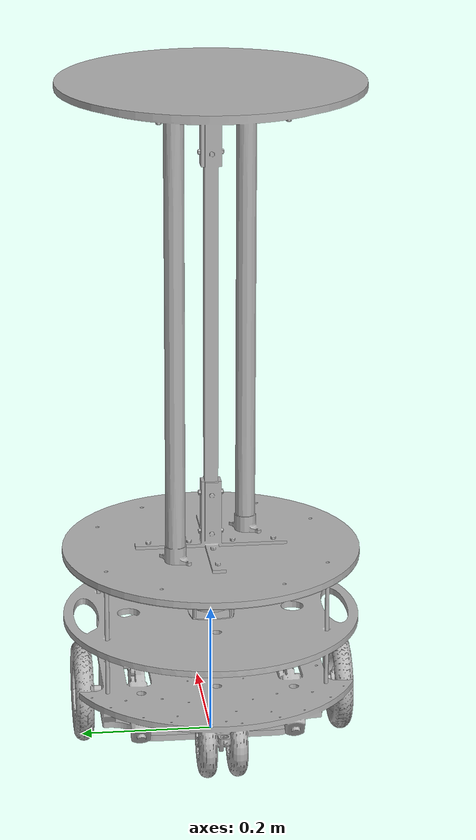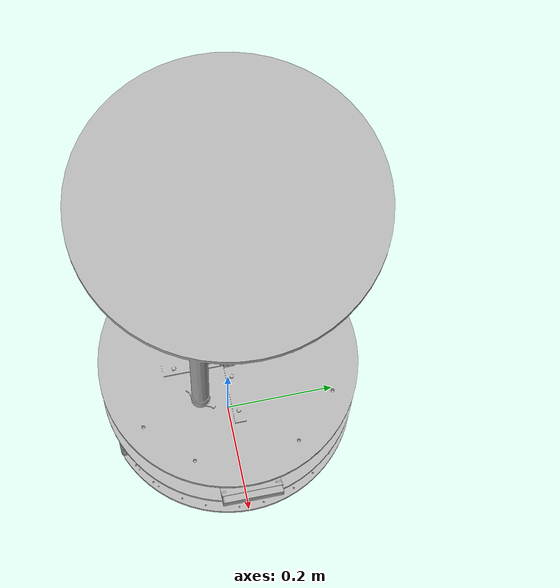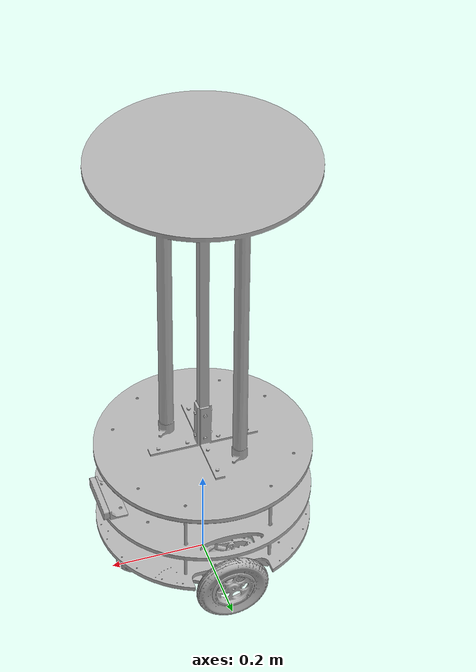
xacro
<?xml version="1.0" ?>
<robot name="ArloBot" xmlns:xacro="http://www.ros.org/wiki/xacro">

<xacro:include filename="$(find ArloBot_description)/urdf/materials.xacro" />
<xacro:include filename="$(find ArloBot_description)/urdf/ArloBot.gazebo" />
<link name="base_link">
  <inertial>
    <origin xyz="-0.0030523720356749316 1.9261577790248708e-05 0.11670714062507807" rpy="0 0 0"/>
    <mass value="36.71339924368182"/>
    <inertia ixx="0.535713" iyy="0.640269" izz="0.817401" ixy="4.7e-05" iyz="-5.3e-05" ixz="-0.004556"/>
  </inertial>
  <visual>
    <origin xyz="0 0 0" rpy="0 0 0"/>
    <geometry>
      <mesh filename="package://ArloBot_description/meshes/base_link.stl" scale="0.001 0.001 0.001"/>
    </geometry>
    <material name="silver"/>
  </visual>
  <collision>
    <origin xyz="0 0 0" rpy="0 0 0"/>
    <geometry>
      <mesh filename="package://ArloBot_description/meshes/base_link.stl" scale="0.001 0.001 0.001"/>
    </geometry>
  </collision>
</link>

<link name="right_wheel_link_1">
  <inertial>
    <origin xyz="-7.835127523269004e-05 -0.0008286369457853882 0.00024348818317009024" rpy="0 0 0"/>
    <mass value="0.12852805590489605"/>
    <inertia ixx="0.000202" iyy="0.000387" izz="0.000201" ixy="0.0" iyz="-0.0" ixz="0.0"/>
  </inertial>
  <visual>
    <origin xyz="-1e-06 0.197739 -0.073907" rpy="0 0 0"/>
    <geometry>
      <mesh filename="package://ArloBot_description/meshes/right_wheel_link_1.stl" scale="0.001 0.001 0.001"/>
    </geometry>
    <material name="silver"/>
  </visual>
  <collision>
    <origin xyz="-1e-06 0.197739 -0.073907" rpy="0 0 0"/>
    <geometry>
      <mesh filename="package://ArloBot_description/meshes/right_wheel_link_1.stl" scale="0.001 0.001 0.001"/>
    </geometry>
  </collision>
</link>

<link name="left_wheel_link_1">
  <inertial>
    <origin xyz="7.860640618754334e-05 0.0008286658783607792 0.00024348818316921594" rpy="0 0 0"/>
    <mass value="0.12852805590489605"/>
    <inertia ixx="0.000202" iyy="0.000387" izz="0.000201" ixy="0.0" iyz="0.0" ixz="-0.0"/>
  </inertial>
  <visual>
    <origin xyz="-1e-06 -0.197738 -0.073907" rpy="0 0 0"/>
    <geometry>
      <mesh filename="package://ArloBot_description/meshes/left_wheel_link_1.stl" scale="0.001 0.001 0.001"/>
    </geometry>
    <material name="silver"/>
  </visual>
  <collision>
    <origin xyz="-1e-06 -0.197738 -0.073907" rpy="0 0 0"/>
    <geometry>
      <mesh filename="package://ArloBot_description/meshes/left_wheel_link_1.stl" scale="0.001 0.001 0.001"/>
    </geometry>
  </collision>
</link>

<link name="laser_link_1">
  <inertial>
    <origin xyz="0.012015087212080352 -0.00038542888607400025 0.016230630117325978" rpy="0 0 0"/>
    <mass value="0.07101157937656205"/>
    <inertia ixx="3e-05" iyy="6e-05" izz="7e-05" ixy="-1e-06" iyz="0.0" ixz="6e-06"/>
  </inertial>
  <visual>
    <origin xyz="3.4e-05 7e-05 -0.197357" rpy="0 0 0"/>
    <geometry>
      <mesh filename="package://ArloBot_description/meshes/laser_link_1.stl" scale="0.001 0.001 0.001"/>
    </geometry>
    <material name="silver"/>
  </visual>
  <collision>
    <origin xyz="3.4e-05 7e-05 -0.197357" rpy="0 0 0"/>
    <geometry>
      <mesh filename="package://ArloBot_description/meshes/laser_link_1.stl" scale="0.001 0.001 0.001"/>
    </geometry>
  </collision>
</link>

<link name="t265_link_1">
  <inertial>
    <origin xyz="-0.014772104868387564 0.0007652305927912085 0.008403288915241724" rpy="0 0 0"/>
    <mass value="0.04138413887059607"/>
    <inertia ixx="4.3e-05" iyy="1e-05" izz="4.8e-05" ixy="-0.0" iyz="-0.0" ixz="-2e-06"/>
  </inertial>
  <visual>
    <origin xyz="-0.22479 7e-05 -0.197457" rpy="0 0 0"/>
    <geometry>
      <mesh filename="package://ArloBot_description/meshes/t265_link_1.stl" scale="0.001 0.001 0.001"/>
    </geometry>
    <material name="silver"/>
  </visual>
  <collision>
    <origin xyz="-0.22479 7e-05 -0.197457" rpy="0 0 0"/>
    <geometry>
      <mesh filename="package://ArloBot_description/meshes/t265_link_1.stl" scale="0.001 0.001 0.001"/>
    </geometry>
  </collision>
</link>

<link name="robot_body_link_1">
  <inertial>
    <origin xyz="-0.002033282414455867 -5.237958272026579e-07 0.4351633630857458" rpy="0 0 0"/>
    <mass value="41.73301322260555"/>
    <inertia ixx="4.868723" iyy="4.855161" izz="0.83066" ixy="0.015711" iyz="-9e-06" ixz="0.023305"/>
  </inertial>
  <visual>
    <origin xyz="0.0 3e-06 -0.295789" rpy="0 0 0"/>
    <geometry>
      <mesh filename="package://ArloBot_description/meshes/robot_body_link_1.stl" scale="0.001 0.001 0.001"/>
    </geometry>
    <material name="silver"/>
  </visual>
  <collision>
    <origin xyz="0.0 3e-06 -0.295789" rpy="0 0 0"/>
    <geometry>
      <mesh filename="package://ArloBot_description/meshes/robot_body_link_1.stl" scale="0.001 0.001 0.001"/>
    </geometry>
  </collision>
</link>

<link name="D435i_link_1">
  <inertial>
    <origin xyz="0.002982481256058017 -7.106919685042275e-06 -0.012633683861636102" rpy="0 0 0"/>
    <mass value="0.062035228314442525"/>
    <inertia ixx="4.3e-05" iyy="1.8e-05" izz="5.3e-05" ixy="0.0" iyz="-0.0" ixz="4e-06"/>
  </inertial>
  <visual>
    <origin xyz="-0.180642 3e-06 -1.010544" rpy="0 0 0"/>
    <geometry>
      <mesh filename="package://ArloBot_description/meshes/D435i_link_1.stl" scale="0.001 0.001 0.001"/>
    </geometry>
    <material name="silver"/>
  </visual>
  <collision>
    <origin xyz="-0.180642 3e-06 -1.010544" rpy="0 0 0"/>
    <geometry>
      <mesh filename="package://ArloBot_description/meshes/D435i_link_1.stl" scale="0.001 0.001 0.001"/>
    </geometry>
  </collision>
</link>
<link name="depth_camera_link">
    <origin xyz="0 0 0" rpy="0 0 0" />
</link>
<joint name="Revolute_26" type="continuous">
  <origin xyz="1e-06 -0.197739 0.073907" rpy="0 0 0"/>
  <parent link="base_link"/>
  <child link="right_wheel_link_1"/>
  <axis xyz="0.0 -1.0 0.0"/>
</joint>

<joint name="Revolute_27" type="continuous">
  <origin xyz="1e-06 0.197738 0.073907" rpy="0 0 0"/>
  <parent link="base_link"/>
  <child link="left_wheel_link_1"/>
  <axis xyz="0.0 -1.0 0.0"/>
</joint>

<joint name="Rigid 28" type="fixed">
  <origin xyz="-3.4e-05 -7e-05 0.197357" rpy="0 0 0"/>
  <parent link="base_link"/>
  <child link="laser_link_1"/>
</joint>

<joint name="Rigid 29" type="fixed">
  <origin xyz="0.22479 -7e-05 0.197457" rpy="0 0 0"/>
  <parent link="base_link"/>
  <child link="t265_link_1"/>
</joint>

<joint name="Rigid 30" type="fixed">
  <origin xyz="0.0 -3e-06 0.295789" rpy="0 0 0"/>
  <parent link="base_link"/>
  <child link="robot_body_link_1"/>
</joint>

<joint name="Rigid 31" type="fixed">
  <origin xyz="0.180642 0.0 0.714755" rpy="0 0 0"/>
  <parent link="robot_body_link_1"/>
  <child link="D435i_link_1"/>
</joint>
<joint name="depth_camera_joint" type="fixed">
        <origin xyz="0 0 0" rpy="-1.57 0 -1.57" />
        <parent link="D435i_link_1" />
        <child link="depth_camera_link" />
    </joint>
</robot>

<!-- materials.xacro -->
<robot name="ArloBot" xmlns:xacro="http://www.ros.org/wiki/xacro" >

<material name="silver">
  <color rgba="0.700 0.700 0.700 1.000"/>
</material>

</robot>

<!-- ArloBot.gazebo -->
<robot name="ArloBot" xmlns:xacro="http://www.ros.org/wiki/xacro" >

<xacro:property name="body_color" value="Gazebo/Silver" />

<gazebo reference="base_link">
  <material>${body_color}</material>
  <mu1>0.2</mu1>
  <mu2>0.2</mu2>
  <selfCollide>true</selfCollide>
  <gravity>true</gravity>
</gazebo>

<gazebo reference="right_wheel_link_1">
    <mu1>0.1</mu1>
    <mu2>0.1</mu2>
    <kp>500000.0</kp>
    <kd>10.0</kd>
    <minDepth>0.001</minDepth>
    <maxVel>0.1</maxVel>
    <fdir1>1 0 0</fdir1>
    <material>Gazebo/FlatBlack</material>
</gazebo>

<gazebo reference="left_wheel_link_1">
    <mu1>0.1</mu1>
    <mu2>0.1</mu2>
    <kp>500000.0</kp>
    <kd>10.0</kd>
    <minDepth>0.001</minDepth>
    <maxVel>0.1</maxVel>
    <fdir1>1 0 0</fdir1>
    <material>Gazebo/FlatBlack</material>
</gazebo>

    <gazebo reference="laser_link_1">
        <material>Gazebo/SkyBlue</material>
        <sensor type="ray" name="lds_lfcd_sensor">
            <pose>0 0 0 0 0 0</pose>
            <visualize>false</visualize>
            <update_rate>5.5</update_rate>
            <ray>
                <scan>
                    <horizontal>
                        <samples>360</samples>
                        <resolution>1</resolution>
                        <min_angle>0.0</min_angle>
                        <max_angle>6.28319</max_angle>
                    </horizontal>
                </scan>
                <range>
                    <min>0.15</min>
                    <max>12</max>
                    <resolution>0.015</resolution>
                </range>
                <noise>
                    <type>gaussian</type>
                    <mean>0.0</mean>
                    <stddev>0.01</stddev>
                </noise>
            </ray>
            <plugin name="gazebo_ros_lds_lfcd_controller" filename="libgazebo_ros_laser.so">
                <topicName>scan</topicName>
                <frameName>laser_link_1</frameName>
            </plugin>
        </sensor>
    </gazebo>

<gazebo reference="t265_link_1">
  <material>${body_color}</material>
  <mu1>0.2</mu1>
  <mu2>0.2</mu2>
  <selfCollide>true</selfCollide>
</gazebo>

<gazebo reference="robot_body_link_1">
  <material>${body_color}</material>
  <mu1>0.2</mu1>
  <mu2>0.2</mu2>
  <selfCollide>true</selfCollide>
</gazebo>

 <!-- depth camera -->
    <gazebo reference="D435i_link_1">
        <material>Gazebo/Indigo</material>
        <sensor type="depth" name="realsense_R200">
            <always_on>true</always_on>
            <visualize>false</visualize>
            <camera>
                <horizontal_fov>1.5184</horizontal_fov>
                <image>
                    <width>470</width>
                    <height>270</height>
                    <format>R8G8B8</format>
                </image>
                <depth_camera></depth_camera>
                <clip>
                    <near>0.03</near>
                    <far>4</far>
                </clip>
            </camera>
            <plugin name="camera_controller" filename="libgazebo_ros_openni_kinect.so">
                <baseline>0.2</baseline>
                <alwaysOn>true</alwaysOn>
                <updateRate>15.0</updateRate>
                <cameraName>d435</cameraName>
                <frameName>depth_camera_link</frameName>
                <imageTopicName>rgb/image_raw</imageTopicName>
                <depthImageTopicName>depth/image_raw</depthImageTopicName>
                <pointCloudTopicName>depth/points</pointCloudTopicName>
                <cameraInfoTopicName>rgb/camera_info</cameraInfoTopicName>
                <depthImageCameraInfoTopicName>depth/camera_info</depthImageCameraInfoTopicName>
                <pointCloudCutoff>0.4</pointCloudCutoff>
                <hackBaseline>0.07</hackBaseline>
                <distortionK1>0.0</distortionK1>
                <distortionK2>0.0</distortionK2>
                <distortionK3>0.0</distortionK3>
                <distortionT1>0.0</distortionT1>
                <distortionT2>0.0</distortionT2>
                <CxPrime>0.0</CxPrime>
                <Cx>0.0</Cx>
                <Cy>0.0</Cy>
                <focalLength>0</focalLength>
                <hackBaseline>0</hackBaseline>
            </plugin>
        </sensor>
    </gazebo>
<!-- diff drive -->
    <gazebo>
        <plugin name="turtlebot3_burger_controller" filename="libgazebo_ros_diff_drive.so">
            <commandTopic>cmd_vel</commandTopic>
            <odometryTopic>odom</odometryTopic>
            <odometryFrame>odom</odometryFrame>
            <odometrySource>world</odometrySource>
            <publishOdomTF>false</publishOdomTF>
            <robotBaseFrame>base_link</robotBaseFrame>
            <publishWheelTF>false</publishWheelTF>
            <publishTf>true</publishTf>
            <publishWheelJointState>true</publishWheelJointState>
            <legacyMode>false</legacyMode>
            <updateRate>30</updateRate>
            <leftJoint>Revolute_27</leftJoint>
            <rightJoint>Revolute_26</rightJoint>
            <wheelSeparation>0.3902</wheelSeparation>
            <wheelDiameter>0.156</wheelDiameter>
            <wheelAcceleration>1</wheelAcceleration>
            <wheelTorque>9.6</wheelTorque>
            <rosDebugLevel>na</rosDebugLevel>
        </plugin>
    </gazebo>
            <!-- imu -->
    <gazebo>
        <plugin name="imu_plugin" filename="libgazebo_ros_imu.so">
            <alwaysOn>true</alwaysOn>
            <bodyName>t265_link_1</bodyName>
            <frameName>t265_link_1</frameName>
            <topicName>imu</topicName>
            <serviceName>imu_service</serviceName>
            <gaussianNoise>0.0</gaussianNoise>
            <updateRate>30</updateRate>
            <imu>
                <noise>
                    <type>gaussian</type>
                    <rate>
                        <mean>0.0</mean>
                        <stddev>2e-4</stddev>
                        <bias_mean>0.0000075</bias_mean>
                        <bias_stddev>0.0000008</bias_stddev>
                    </rate>
                    <accel>
                        <mean>0.0</mean>
                        <stddev>1.7e-2</stddev>
                        <bias_mean>0.1</bias_mean>
                        <bias_stddev>0.001</bias_stddev>
                    </accel>
                </noise>
            </imu>
        </plugin>
    </gazebo>
</robot>
